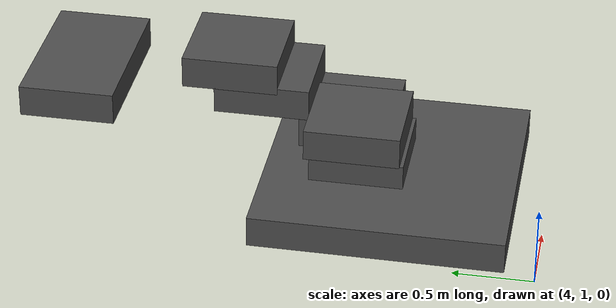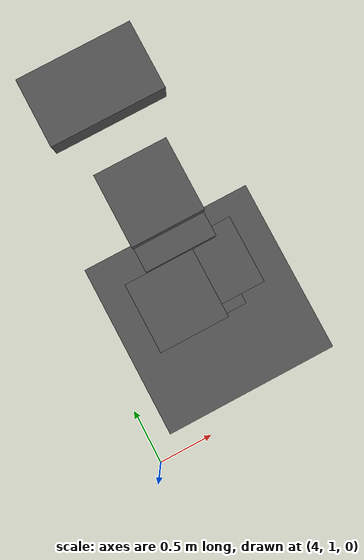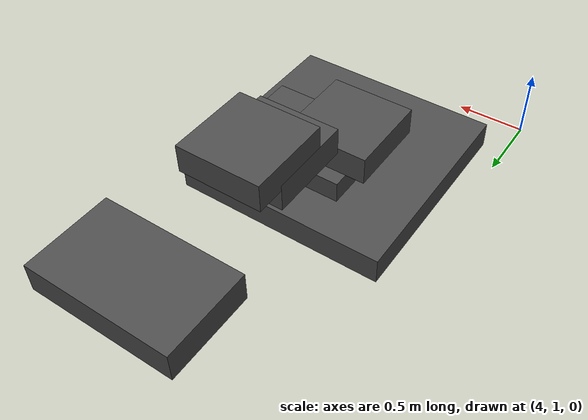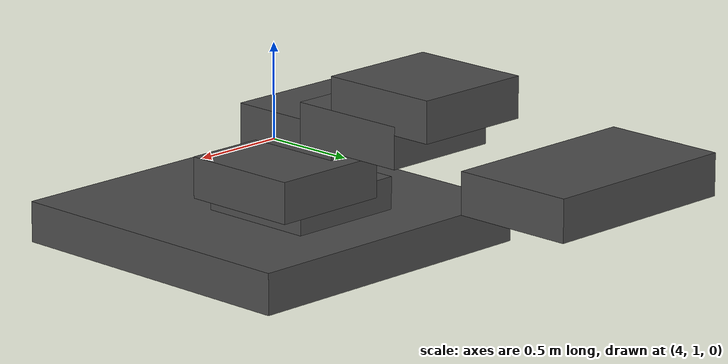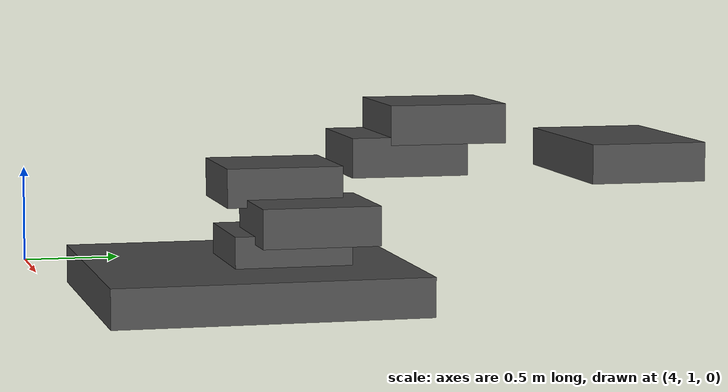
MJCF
<mujoco>
  <worldbody>
    <light diffuse=".5 .5 .5" pos="0 2 0.075" dir="0 0 -1"/>
    <body pos="5 2 0">
      <joint type="free"/>
      <geom type="box" size=".8 .8 .1" rgba="0.3 0.3 0.3 1"/>
    </body>
  </worldbody>

  <worldbody>
        <light diffuse=".5 .5 .5" pos="0 3 0.3" dir="0 0 -1"/>
    <body pos="5 2.2 0.16">
          <joint type="free"/>

      <geom type="box" size="0.3 0.3 0.1" rgba="0.3 0.3 0.3 1"/>
    </body>
  </worldbody>

    <worldbody>
    <light diffuse=".5 .5 .5" pos="0 4 .5" dir="0 0 -1"/>
    <body pos="5.2 2.3 .32">
          <joint type="free"/>

      <geom type="box" size="0.3 0.3 0.1" rgba="0.3 0.3 0.3 1"/>
    </body>
  </worldbody>
      <worldbody>
    <light diffuse=".5 .5 .5" pos="0 4 .5" dir="0 0 -1"/>
    <body pos="4.8 2.2 .48">
          <joint type="free"/>

      <geom type="box" size="0.3 0.3 0.1" rgba="0.3 0.3 0.3 1"/>
    </body>
  </worldbody>
        <worldbody>
    <light diffuse="1 1 1" pos="0 4 5" dir="0 0 -1"/>
    <body pos="5 2.8 .64">
          <joint type="free"/>

      <geom type="box" size="0.3 0.3 0.1" rgba="0.3 0.3 0.3 1"/>
    </body>
  </worldbody>
  <worldbody>
    <light diffuse=".5 .5 .5" pos="0 4 .5" dir="0 0 -1"/>
    <body pos="5 3 0.8">
    <joint type="free"/>
    <geom type="box" size="0.3 0.3 0.1" rgba="0.3 0.3 0.3 1"/>
    </body>
  </worldbody>

  <worldbody>
    <light diffuse="1 1 1" pos="5 3.5 5" dir="0 0 -1"/>
    <body pos="5 4 0.6">
    <joint type="free"/>
    <geom type="box" size="0.5 0.3 0.1" rgba="0.3 0.3 0.3 1"/>
    </body>
  </worldbody>

</mujoco>
